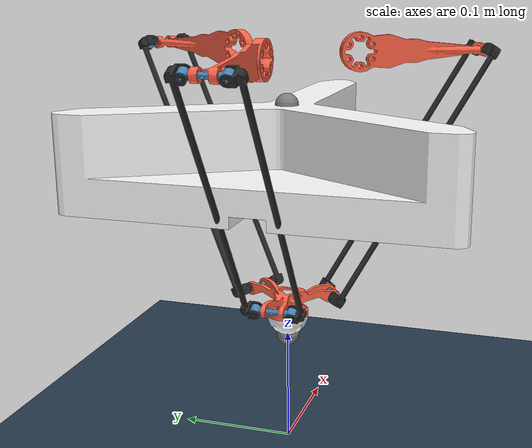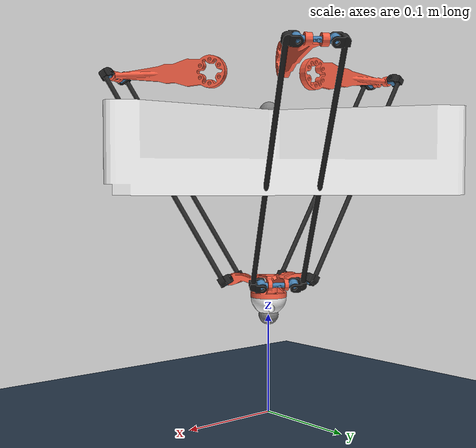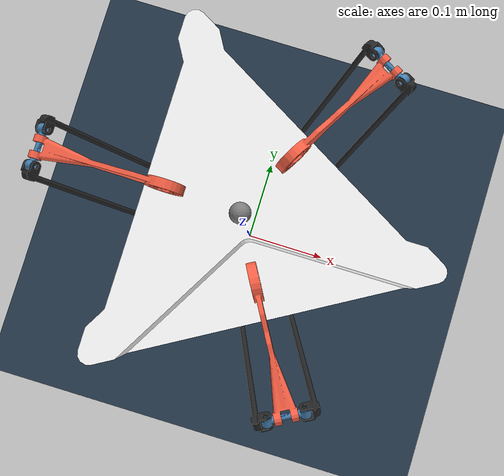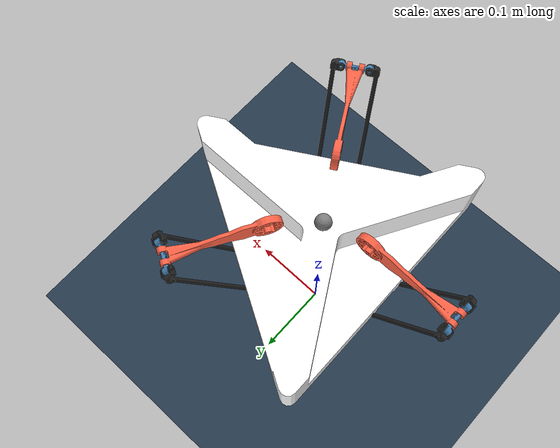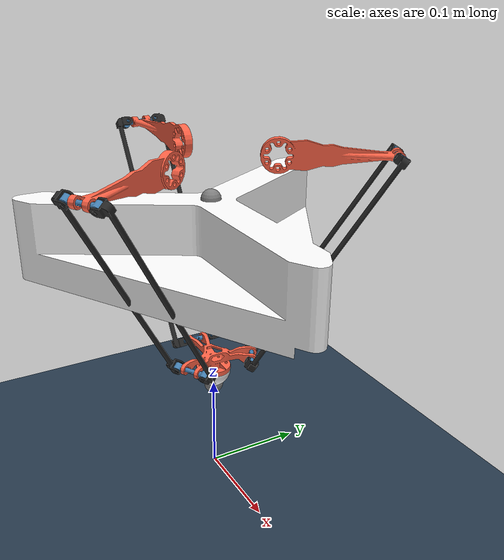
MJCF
<mujoco model="quata">
  <option gravity="0 0 -9.81"/>
  <compiler angle="radian" meshdir="../meshes/" />
  <statistic meansize="0.03" extent="0.465147" center="-0.0174153 1.79806e-11 -0.0268814"/>
  <option timestep="0.0005" integrator="Euler"/>
  <option noslip_iterations="3" noslip_tolerance="1e-9"/>
  <option>
    <flag multiccd="enable"/>
  </option>
  <asset>
    <mesh name="base_link" file="base_link.STL"/>
    <mesh name="foot" file="foot.STL"/>
    <mesh name="End" file="FootEnd.STL"/>

    <!--
    upperLeg大腿
    upperhuke上面的横杆
    lowerleg小腿
    lowerhuke下面的横杆
     -->
    <mesh name="upperLegA" file="upperLegA.STL"/>
    <mesh name="upperHukeA" file="upperHukeA.STL"/>
    <mesh name="lowerLegA1" file="lowerLegA1.STL"/>
    <mesh name="lowerLegA2" file="lowerLegA2.STL"/>
    <mesh name="lowerHukeA" file="lowerHukeA.STL"/>

    <mesh name="upperLegB" file="upperLegB.STL"/>
    <mesh name="upperHukeB" file="upperHukeB.STL"/>
    <mesh name="lowerLegB1" file="lowerLegB1.STL"/>
    <mesh name="lowerLegB2" file="lowerLegB2.STL"/>
    <mesh name="lowerHukeB" file="lowerHukeB.STL"/>

    <mesh name="upperLegC" file="upperLegC.STL"/>
    <mesh name="upperHukeC" file="upperHukeC.STL"/>
    <mesh name="lowerLegC1" file="lowerLegC1.STL"/>
    <mesh name="lowerLegC2" file="lowerLegC2.STL"/>
    <mesh name="lowerHukeC" file="lowerHukeC.STL"/>

    <texture name="grid" type="2d" builtin="checker" rgb1=".2 .3 .4" rgb2=".1 0.15 0.2" width="300" height="300"/>
    <material name="grid" texture="grid" texrepeat="8 8" reflectance=".1"/>
  </asset>

  <default>
    <!--contype自身碰撞类型 conaffinity判断和别人碰撞，自己兼容的碰撞类型 二进制有交集才碰-->
    <geom contype="0" conaffinity="0" condim="6" friction="2.0 0.05 0.0001" solref="-50000 -100"/>
  </default>

  <worldbody>
    <light name="top" pos="0 0 10" castshadow="false" />
    <geom name="floor" size="10 10 .01" type="plane" pos="0 0 0" material="grid" contype="1" conaffinity="1"/>

    <body name="foot" pos="0 0 0.129" quat="0.612 0.612 0.354 0.354">
      <freejoint />
      <site name="EndSite" size=".01" pos="0 -0.029 0"/>
      <inertial pos="0.0 0.002507 0.0" quat="0 0 0 1" mass="0.03" diaginertia="1.1049e-05 1.9816e-05 1.1049e-05"/>
      <geom type="mesh" rgba="1 0.3882 0.2784 1" mesh="foot"/>
      <body name="End" pos="0 -0.011 0" quat="0 0 0 1">
        <inertial pos="0 0.006601 0" quat="0 0 0 1" mass="0.013" diaginertia="1.075e-06 1.619e-06 1.075e-06"/>
        <geom type="mesh" rgba="1 1 1 1" mesh="End" contype="1" conaffinity="0"/>
      </body>
    </body>

    <body name="base" pos = "0 0 0.304">
      <!--freejoint用来控制baselink是不是浮动的-->
      <joint name="baseslidez" pos="0 0 0" axis="0 0 1" type="slide"/>
      <joint name="baseslidex" pos="0 0 0" axis="1 0 0" type="slide"/>
      <joint name="basehingey" pos="0 0 0" axis="0 1 0" type="hinge"/>
      <site name="Imu" size=".01" pos="0 0 0"/>
      <inertial pos="0 0 0.042512" quat="0 0 0 1" mass="1.0" diaginertia="2.7582e-03 2.7582e-03 4.6608e-03"/>
      <geom type="mesh" rgba="1 1 1 1" mesh="base_link" contype="1" conaffinity="0"/>
      <body name="upperLegA" pos="-0.0625 0 0.0425" quat="0 0 -0.707107 0.707107">
        <inertial pos="0.045958 0 0" quat="0 0 0 1" mass="0.034" diaginertia="1.884e-06 5.2367e-05 5.3574e-05"/>
        <joint name="JointupperLegA" pos="0 0 0" axis="0 0 1" damping="0.01" range="-1.35 1.35"/>
        <geom type="mesh" rgba="1 0.3882 0.2784 1" mesh="upperLegA"/>
        <body name="upperHukeA" pos="0.11 0 0" quat="0.484768 0 0 0.874643">
          <inertial pos="0 0 0" quat="0 0 0 1" mass="0.004" diaginertia="8.43e-07 8.45e-07 3.4e-08"/>
          <joint name="JointupperHukeA" pos="0 0 0" axis="0 0 1"/>
          <geom type="mesh" rgba="0.2745 0.5098 0.7059 1" mesh="upperHukeA"/>
          <body name="lowerLegA1" pos="0 0 0.016" quat="0.336547 -0.621881 0.621881 0.336547">
            <inertial pos="-0.006227 -0.125 -0.004068" quat="0 0 0 1" mass="0.009" diaginertia="8.3067e-5 1.48e-7 8.3078e-5"/>
            <joint name="JointlowerLegA1" pos="0 0 0" axis="0.546944 0 -0.837169"/>
            <geom type="mesh" rgba="0.15 0.15 0.15 1" mesh="lowerLegA1"/>
            <body name="lowerHukeA" pos="-0.0019143 -0.25 0.0029301" quat="0.336548 0.621879 -0.621881 -0.33655">
              <inertial pos="0 -0.0035 -0.016" quat="0 0 0 1" mass="0.004" diaginertia="8.43e-07 8.45e-07 3.4e-08"/>
              <joint name="JointlowerHukeA" pos="0 0 0" axis="0 -1 0"/>
              <geom type="mesh" rgba="0.2745 0.5098 0.7059 1" mesh="lowerHukeA"/>
            </body>
          </body>
          <body name="lowerLegA2" pos="0 0 -0.016" quat="0.621881 0.336547 -0.336547 0.621881">
            <inertial pos="-0.006227 -0.125 -0.004068" quat="0 0 0 1" mass="0.009" diaginertia="8.3067e-5 1.48e-7 8.3078e-5"/>
            <joint name="JointlowerLegA2" pos="0 0 0" axis="0.546944 0 -0.837169"/>
            <geom type="mesh" rgba="0.15 0.15 0.15 1" mesh="lowerLegA2"/>
          </body>
        </body>
      </body>
      <body name="upperLegB" pos="0.03125 0.0541266 0.0425" quat="0.612372 0.612372 0.353553 0.353553">
        <inertial pos="0.045958 0 0" quat="0 0 0 1" mass="0.034" diaginertia="1.884e-06 5.2367e-05 5.3574e-05"/>
        <joint name="JointupperLegB" pos="0 0 0" axis="0 0 -1" damping="0.01" range="-1.35 1.35"/>
        <geom type="mesh" rgba="1 0.3882 0.2784 1" mesh="upperLegB"/>
        <body name="upperHukeB" pos="0.11 0 0" quat="0.874643 0 0 0.484768">
          <inertial pos="0 0 0" quat="0 0 0 1" mass="0.004" diaginertia="8.43e-07 8.45e-07 3.4e-08"/>
          <joint name="JointupperHukeB" pos="0 0 0" axis="0 0 1"/>
          <geom type="mesh" rgba="0.2745 0.5098 0.7059 1" mesh="upperHukeB"/>
          <body name="lowerLegB1" pos="0 0 -0.016" quat="0.621881 -0.336547 -0.336547 -0.621881">
            <inertial pos="-0.006227 -0.125 -0.004068" quat="0 0 0 1" mass="0.009" diaginertia="8.3067e-5 1.48e-7 8.3078e-5"/>
            <joint name="JointlowerLegB1" pos="0 0 0" axis="0.546944 0 -0.837169"/>
            <geom type="mesh" rgba="0.15 0.15 0.15 1" mesh="lowerLegB1"/>
            <body name="lowerHukeB" pos="-0.0019143 -0.25 0.0029301" quat="0.621879 0.336548 0.336549 0.621882">
              <inertial pos="0 -0.0035 0.016" quat="0 0 0 1" mass="0.004" diaginertia="8.43e-07 8.45e-07 3.4e-08"/>
              <joint name="JointlowerHukeB" pos="0 0 0" axis="0 -1 0"/>
              <geom type="mesh" rgba="0.2745 0.5098 0.7059 1" mesh="lowerHukeB"/>
            </body>
          </body>
          <body name="lowerLegB2" pos="0 0 0.016" quat="-0.336547 -0.621881 -0.621881 0.336547">
            <inertial pos="-0.006227 -0.125 -0.004068" quat="0 0 0 1" mass="0.009" diaginertia="8.3067e-5 1.48e-7 8.3078e-5"/>
            <joint name="JointlowerLegB2" pos="0 0 0" axis="0.546944 0 -0.837169"/>
            <geom type="mesh" rgba="0.15 0.15 0.15 1" mesh="lowerLegB2"/>
          </body>
        </body>
      </body>
      <body name="upperLegC" pos="0.03125 -0.0541266 0.0425" quat="0.612372 0.612372 -0.353553 -0.353553">
        <inertial pos="0.045958 0 0" quat="0 0 0 1" mass="0.034" diaginertia="1.884e-06 5.2367e-05 5.3574e-05"/>
        <joint name="JointupperLegC" pos="0 0 0" axis="0 0 -1" damping="0.01" range="-1.35 1.35"/>
        <geom type="mesh" rgba="1 0.3882 0.2784 1" mesh="upperLegC"/>
        <body name="upperHukeC" pos="0.11 0 0" quat="0.874643 0 0 0.484768">
          <inertial pos="0 0 0" quat="0 0 0 1" mass="0.004" diaginertia="8.43e-07 8.45e-07 3.4e-08"/>
          <joint name="JointupperHukeC" pos="0 0 0" axis="0 0 1"/>
          <geom type="mesh" rgba="0.2745 0.5098 0.7059 1" mesh="upperHukeC"/>
          <body name="lowerLegC1" pos="0 0 -0.016" quat="0.621881 -0.336547 -0.336547 -0.621881">
            <inertial pos="-0.006227 -0.125 -0.004068" quat="0 0 0 1" mass="0.009" diaginertia="8.3067e-5 1.48e-7 8.3078e-5"/>
            <joint name="JointlowerLegC1" pos="0 0 0" axis="0.546944 0 -0.837169"/>
            <geom type="mesh" rgba="0.15 0.15 0.15 1" mesh="lowerLegC1"/>
            <body name="lowerHukeC" pos="-0.0019143 -0.25 0.0029301" quat="0.336548 -0.621879 -0.621881 0.33655">
              <inertial pos="0 0.0035 -0.016" quat="0 0 0 1" mass="0.004" diaginertia="8.43e-07 8.45e-07 3.4e-08"/>
              <joint name="JointlowerHukeC" pos="0 0 0" axis="0 1 0"/>
              <geom type="mesh" rgba="0.2745 0.5098 0.7059 1" mesh="lowerHukeC"/>
            </body>
          </body>
          <body name="lowerLegC2" pos="0 0 0.016" quat="0.336547 0.621881 0.621881 -0.336547">
            <inertial pos="-0.006227 -0.125 -0.004068" quat="0 0 0 1" mass="0.009" diaginertia="8.3067e-5 1.48e-7 8.3078e-5"/>
            <joint name="JointlowerLegC2" pos="0 0 0" axis="0.546944 0 -0.837169"/>
            <geom type="mesh" rgba="0.15 0.15 0.15 1" mesh="lowerLegC2"/>
          </body>
        </body>
      </body>
    </body>
  </worldbody>

  <equality>
    <connect name="cn31241_1"  body1="lowerHukeA" body2="lowerLegA2" anchor="0 0 -0.032" solref="-750000 -10"/>
    <connect name="cn31241_2"  body1="lowerHukeA" body2="lowerLegA2" anchor="0 -0.007 -0.032" solref="-750000 -10"/>
    <connect name="cn32242_1"  body1="lowerHukeB" body2="lowerLegB2" anchor="0 0 0.032" solref="-750000 -10"/>
    <connect name="cn32242_2"  body1="lowerHukeB" body2="lowerLegB2" anchor="0 -0.007 0.032" solref="-750000 -10"/>
    <connect name="cn33243_1"  body1="lowerHukeC" body2="lowerLegC2" anchor="0 0 -0.032" solref="-750000 -10"/>
    <connect name="cn33243_2"  body1="lowerHukeC" body2="lowerLegC2" anchor="0 0.007 -0.032" solref="-750000 -10"/>
    <connect name="cn41foot_1"  body1="lowerHukeA" body2="foot" anchor="0 -0.0035 -0.008" solref="-750000 -10"/>
    <connect name="cn41foot_2"  body1="lowerHukeA" body2="foot" anchor="0 -0.0035 -0.024" solref="-750000 -10"/>
    <connect name="cn42foot_1"  body1="lowerHukeB" body2="foot" anchor="0 -0.0035 0.008" solref="-750000 -10"/>
    <connect name="cn42foot_2"  body1="lowerHukeB" body2="foot" anchor="0 -0.0035 0.024" solref="-750000 -10"/>
    <connect name="cn43foot_1"  body1="lowerHukeC" body2="foot" anchor="0 0.0035 -0.008" solref="-750000 -10"/>
    <connect name="cn43foot_2"  body1="lowerHukeC" body2="foot" anchor="0 0.0035 -0.024" solref="-750000 -10"/>
  </equality>

  <actuator>
    <motor name="JointA_motor" ctrllimited="true" ctrlrange="-12.0 12.0" gear="1" joint="JointupperLegA"/>
    <motor name="JointB_motor" ctrllimited="true" ctrlrange="-12.0 12.0" gear="1" joint="JointupperLegB" />
    <motor name="JointC_motor" ctrllimited="true" ctrlrange="-12.0 12.0" gear="1" joint="JointupperLegC"/>
  </actuator>

  <sensor>
    <!-- Imu data -->
    <!-- Todo: add noise and cutoff -->
    <framequat name="BodyQuat" objtype="site" objname="Imu"/>
    <gyro name="BodyGyro" site="Imu" noise="0" />
    <accelerometer name="BodyAcc" site="Imu" noise="0" cutoff="100"/>
    <velocimeter name="BodyVel" site="Imu" noise="0" cutoff="100"/>

    <!-- Joint data -->
    <actuatorpos name="JointAPos" actuator="JointA_motor" noise="0"/>
    <actuatorpos name="JointBPos" actuator="JointB_motor" noise="0"/>
    <actuatorpos name="JointCPos" actuator="JointC_motor" noise="0"/>

    <actuatorvel name="JointAVel" actuator="JointA_motor" noise="0"/>
    <actuatorvel name="JointBVel" actuator="JointB_motor" noise="0"/>
    <actuatorvel name="JointCVel" actuator="JointC_motor" noise="0"/>

    <actuatorfrc name="JointATor" actuator="JointA_motor" noise="0"/>
    <actuatorfrc name="JointBTor" actuator="JointB_motor" noise="0"/>
    <actuatorfrc name="JointCTor" actuator="JointC_motor" noise="0"/>

    <!-- touch -->
    <touch name="touchSensor" site="EndSite"/>

  </sensor>

</mujoco>
